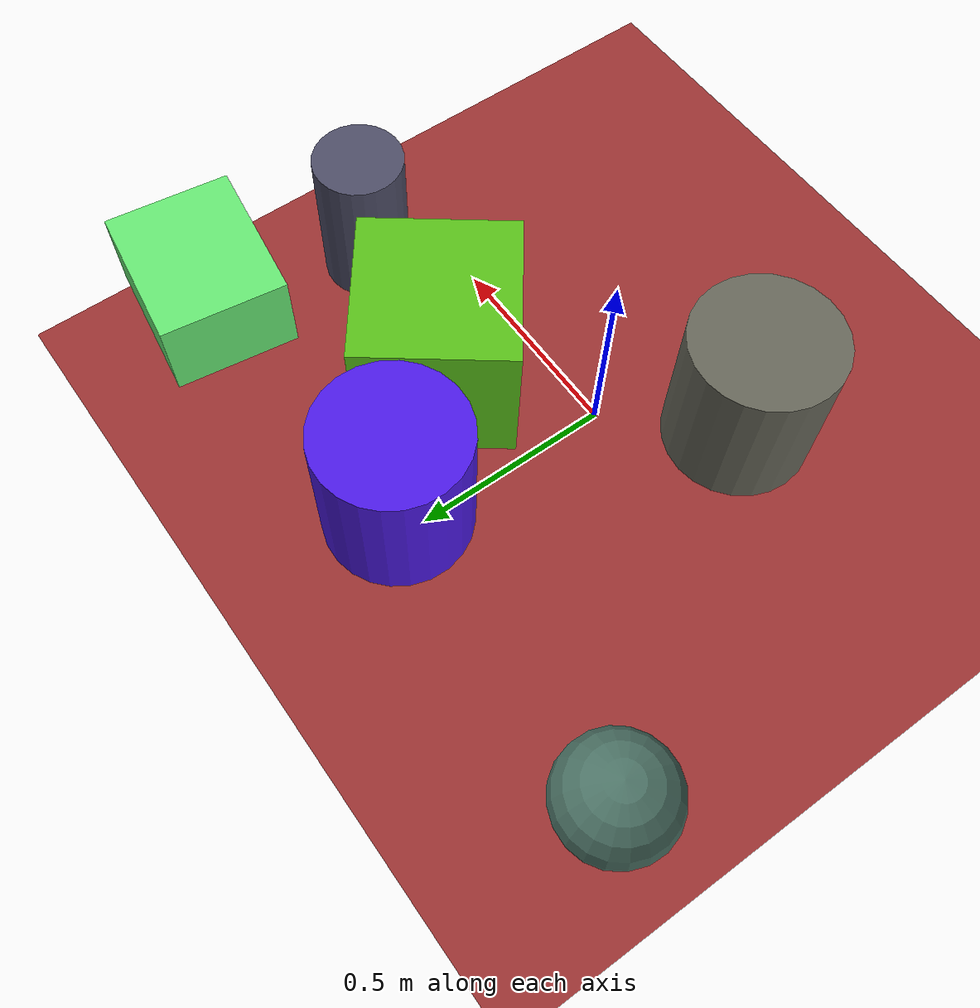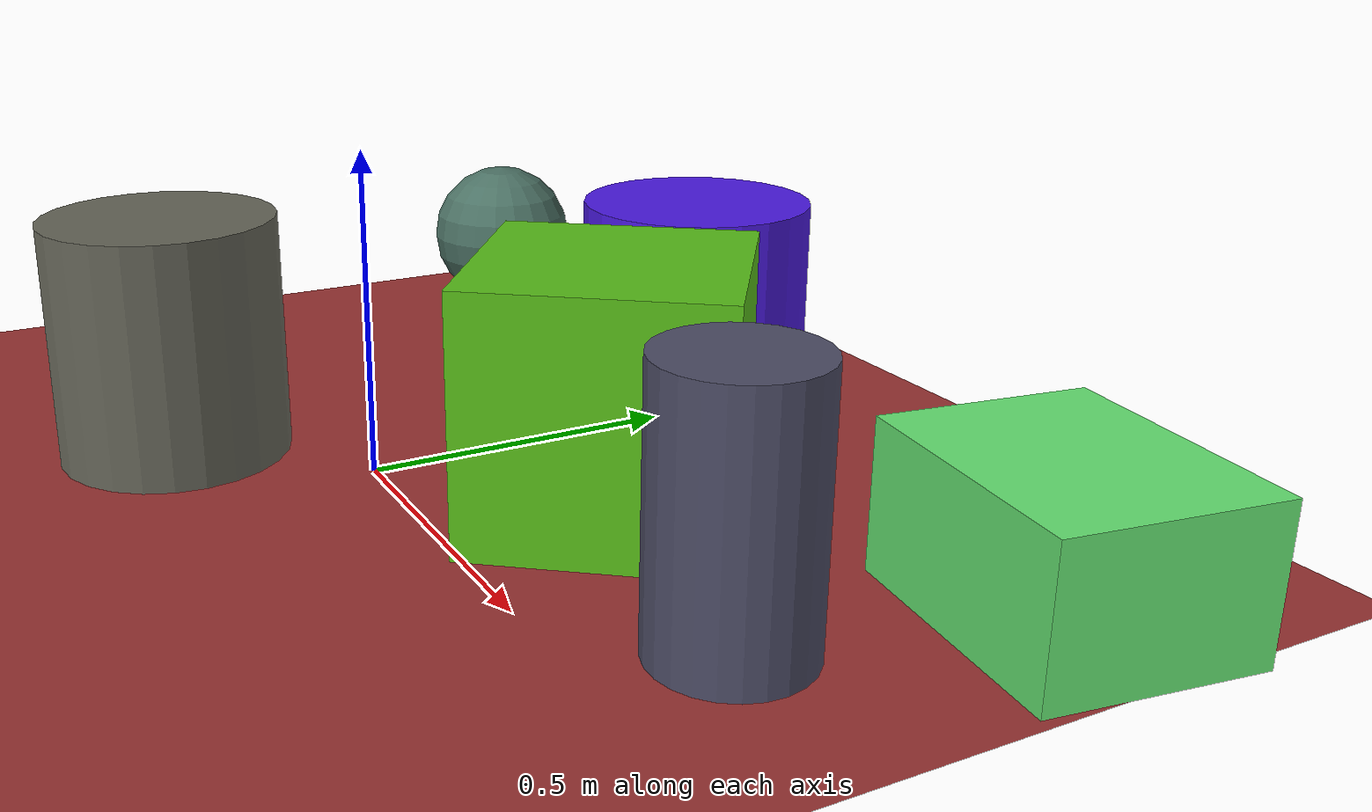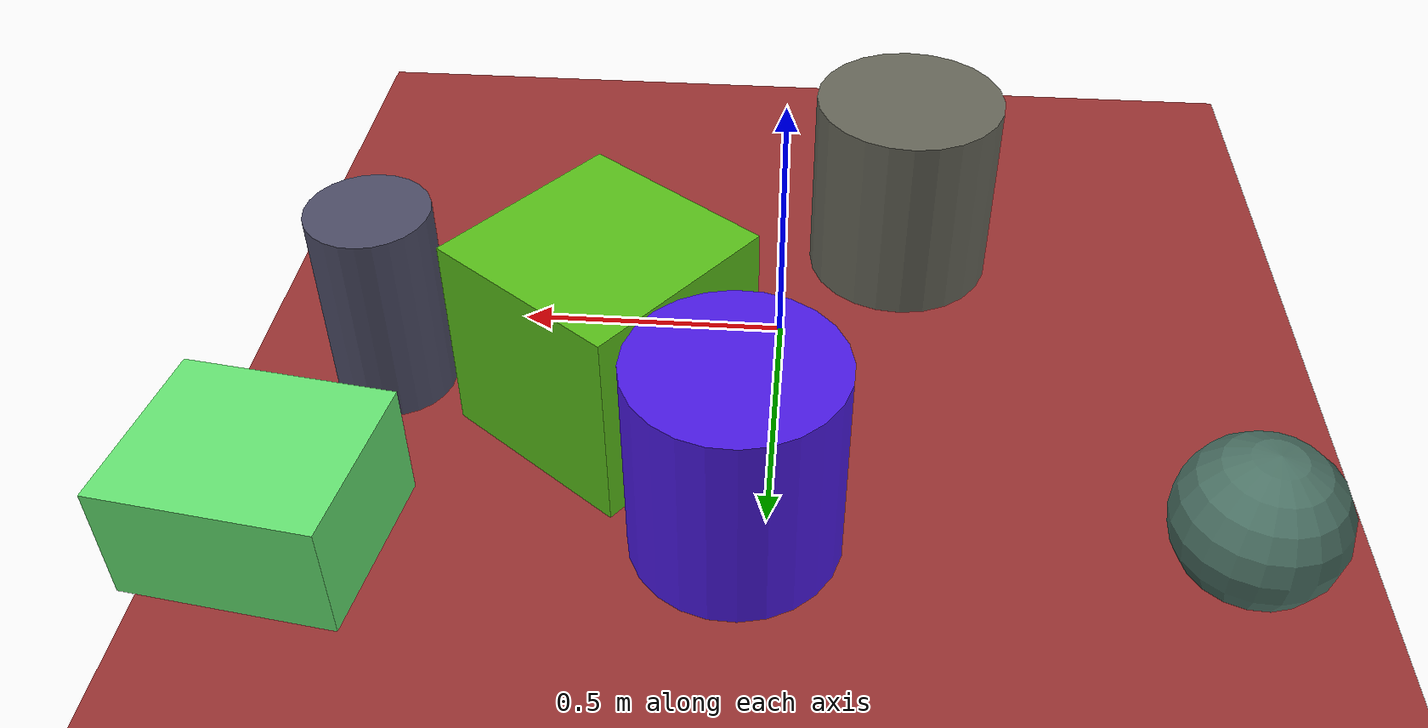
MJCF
<mujoco>
   <asset>
<texture type="skybox" builtin="gradient" rgb1="1.0 0.6 0.2" rgb2="0.6 0.9 0.8" width="500" height="500"/>
<texture name="checker_0" builtin="checker" rgb1="0.3 0.2 0.5" rgb2="0.5 0.6 0.2" width="500" height="500"/>
<texture name="checker_1" builtin="checker" rgb1="0.4 0.9 0.2" rgb2="0.3 0.6 0.0" width="500" height="500"/>
<texture name="checker_2" builtin="checker" rgb1="0.6 0.5 0.5" rgb2="0.0 0.4 0.3" width="500" height="500"/>
<texture name="flat_3" builtin="flat" rgb1="0.3 0.1 0.9" rgb2="0.3 0.1 0.9"  width="500" height="500"/>
<texture name="checker_4" builtin="checker" rgb1="0.1 0.9 0.8" rgb2="0.7 0.9 0.1" width="500" height="500"/>
<texture name="gradient_5" builtin="gradient" rgb1="0.3 0.6 0.2" rgb2="0.3 0.0 0.6" width="500" height="500"/><material name="checker_0_mat" reflectance="0.776685898972949" texrepeat="4 4" texture="checker_0" texuniform="false" />
<material name="checker_1_mat" reflectance="0.566210978302772" texrepeat="10 10" texture="checker_1" texuniform="false" />
<material name="checker_2_mat" reflectance="0.1576511382097152" texrepeat="8 8" texture="checker_2" texuniform="false" />
<material name="flat_3_mat" reflectance="0.8792717986756197" texture="flat_3" texuniform="true"/>
<material name="checker_4_mat" reflectance="0.530352780247262" texrepeat="3 3" texture="checker_4" texuniform="false" />
<material name="gradient_5_mat" reflectance="0.9797000581684553" texture="gradient_5" texuniform="true"/>
   </asset>

   <worldbody>
     <geom type="plane" size="1 1 0.1" rgba="0.6 0.2 0.2 1" />
<light pos="-0.035845455018015615 0.6038218817396384 2" dir="0 0 -1" cutoff="90" diffuse="1 1 1" specular="1 1 1"/>
<geom type="cylinder" pos="-0.23 -0.25 0.19" size="0.18 0.19 0.19" material="checker_0_mat" euler="0 0 76" />
<geom type="box" pos="0.3 0.25 0.19" size="0.19 0.19 0.19" material="checker_1_mat" euler="0 0 53" />
<geom type="sphere" pos="-0.77 0.57 0.14" size="0.14 0.14 0.14" material="checker_2_mat" euler="0 0 6" />
<geom type="cylinder" pos="0.05 0.54 0.19" size="0.18 0.19 0.19" material="flat_3_mat" euler="0 0 65" />
<geom type="box" pos="0.82 0.6 0.11" size="0.16 0.19 0.11" material="checker_4_mat" euler="0 0 82" />
<geom type="cylinder" pos="0.71 0.19 0.19" size="0.11 0.19 0.19" material="gradient_5_mat" euler="0 0 34" /><camera euler="60 0 180" fovy="60" name="camera1" pos="-0.2 -1.5 1"></camera>   </worldbody>
   <visual>
      <headlight diffuse="0.7 0.7 0.7"/>
   </visual>
</mujoco>
